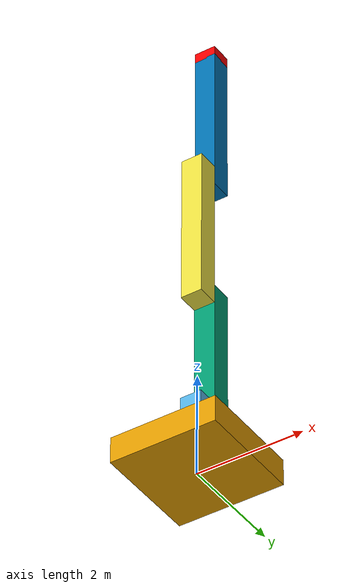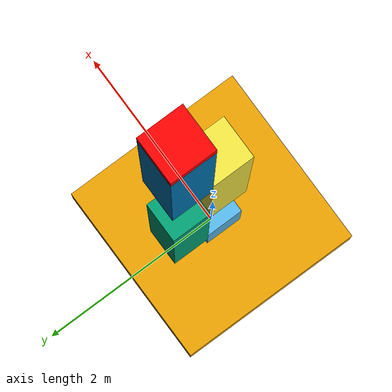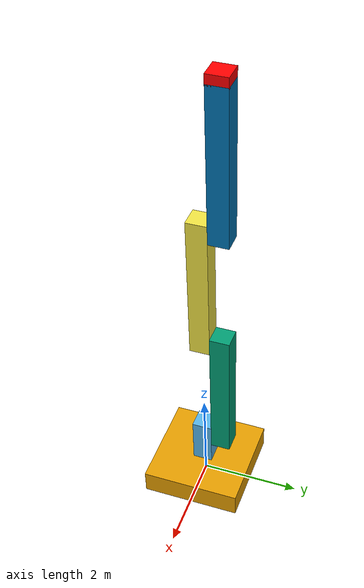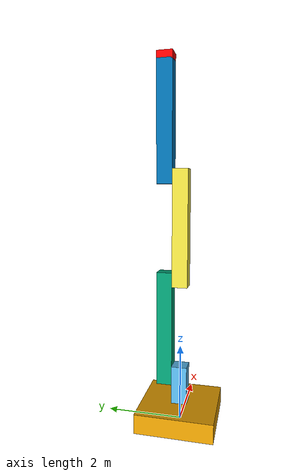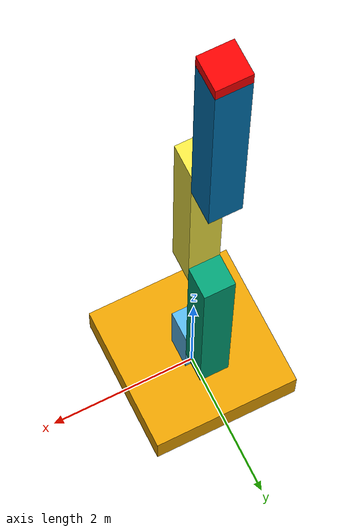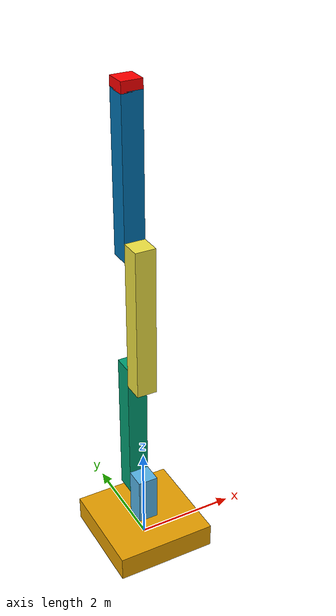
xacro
<?xml version="1.0"?>
<robot name="simple_robot" xmlns:xacro="http://www.ros.org/wiki/xacro">

        <xacro:include filename="$(find robotic_arm)/model/parameters.xacro"/>
        <xacro:include filename="$(find robotic_arm)/model/gazebo.xacro"/>

        <link name="base_link">
                <inertial>
                        <mass value="1500"/>
                        <inertia ixx="0.1" ixy="0.0" ixz="0.0" iyy="0.1" iyz="0" izz="0.1" />
                </inertial>
                <visual>
                        <geometry>
                                <box size="${base_length} ${base_width} ${base_height}"/>
                        </geometry>
                        <origin xyz="0 0 ${base_height/2}" rpy="0 0 0"/>
                </visual>
                <collision>
                        <geometry>
                                <box size="${base_length} ${base_width} ${base_height}"/>
                        </geometry>
                        <origin xyz="0 0 ${base_height/2}" rpy="0 0 0"/>
                </collision>
        </link>

        <link name="first_arm_link">
                <inertial>
                        <mass value="1"/>
                        <inertia ixx="0.001" ixy="0.0" ixz="0.0" iyy="0.001" iyz="0" izz="0.001" />
                </inertial>
                <visual>
                        <geometry>
                                <box size="${first_arm_length} ${first_arm_width} ${first_arm_height}"/>
                        </geometry>
                        <origin xyz="0 0 ${first_arm_height/2}" rpy="0 0 0"/>
                </visual>
                <collision>
                        <geometry>
                                <box size="${first_arm_length} ${first_arm_width} ${first_arm_height}"/>
                        </geometry>
                        <origin xyz="0 0 ${first_arm_height/2}" rpy="0 0 0"/>
                </collision>
        </link>

        <joint name="first_arm_joint" type="revolute">
                <origin xyz="0 0 ${base_height}" rpy="0 0 0"/>
                <parent link="base_link"/>
                <child link="first_arm_link"/>
                <axis xyz="0 0 1"/>
                <limit lower="-1.571" upper="1.571" effort="1000" velocity="1"/>
        </joint>

        <link name="second_arm_link">
                <inertial>
                        <mass value="1"/>
                        <inertia ixx="0.001" ixy="0.0" ixz="0.0" iyy="0.001" iyz="0" izz="0.001"/>
                </inertial>
                <visual>
                        <geometry>
                                <box size="${arm_length} ${arm_width} ${arm_height}"/>
                        </geometry>
                        <origin xyz="0 0 ${arm_height/2 - arm_height/8}" rpy="0 0 0"/>
                </visual>
                <collision>
                        <geometry>
                                <box size="${arm_length} ${arm_width} ${arm_height}"/>
                        </geometry>
                        <origin xyz="0 0 ${arm_height/2 - arm_height/8}" rpy="0 0 0"/>
                </collision>
        </link>

        <joint name="second_arm_joint" type="revolute">
                <origin xyz="0 ${first_arm_width} ${first_arm_height - first_arm_height/8}" rpy="0 0 0"/>
                <parent link="first_arm_link"/>
                <child link="second_arm_link"/>
                <axis xyz="0 1 0"/>
                <limit lower="-1.571" upper="1.571" effort="1000" velocity="1"/>
        </joint>

        <link name="third_arm_link">
                <inertial>
                        <mass value="1"/>
                        <inertia ixx="0.001" ixy="0.0" ixz="0.0" iyy="0.001" iyz="0" izz="0.001"/>
                </inertial>
                <visual>
                        <geometry>
                                <box size="${arm_length} ${arm_width} ${arm_height}"/>
                        </geometry>
                        <origin xyz="0 0 ${arm_height/2 - arm_height/8}" rpy="0 0 0"/>
                </visual>
                <collision>
                        <geometry>
                                <box size="${arm_length} ${arm_width} ${arm_height}"/>
                        </geometry>
                        <origin xyz="0 0 ${arm_height/2 - arm_height/8}" rpy="0 0 0"/>
                </collision>
        </link>

        <joint name="third_arm_joint" type="revolute">
                <origin xyz="0 ${-arm_width} ${arm_height - arm_height/8}" rpy="0 0 0"/>
                <parent link="second_arm_link"/>
                <child link="third_arm_link"/>
                <axis xyz="0 1 0"/>
                <limit lower="-1.571" upper="1.571" effort="1000" velocity="1"/>
        </joint>

        <link name="fourth_arm_link">
                <inertial>
                        <mass value="1"/>
                        <inertia ixx="0.001" ixy="0.0" ixz="0.0" iyy="0.001" iyz="0" izz="0.001"/>
                </inertial>
                <visual>
                        <geometry>
                                <box size="${arm_length} ${arm_width} ${arm_height}"/>
                        </geometry>
                        <origin xyz="0 0 ${arm_height/2 - arm_height/8}" rpy="0 0 0"/>
                </visual>
                <collision>
                        <geometry>
                                <box size="${arm_length} ${arm_width} ${arm_height}"/>
                        </geometry>
                        <origin xyz="0 0 ${arm_height/2 - arm_height/8}" rpy="0 0 0"/>
                </collision>
        </link>

        <joint name="fourth_arm_joint" type="revolute">
                <origin xyz="0 ${arm_width} ${arm_height - arm_height/8}" rpy="0 0 0"/>
                <parent link="third_arm_link"/>
                <child link="fourth_arm_link"/>
                <axis xyz="0 1 0"/>
                <limit lower="-1.571" upper="1.571" effort="1000" velocity="1"/>
        </joint>

        <link name="visual_reference">
                <inertial>
                        <mass value="1"/>
                        <inertia ixx="0.001" ixy="0.0" ixz="0.0" iyy="0.001" iyz="0" izz="0.001"/>
                </inertial>
                <visual>
                        <geometry>
                                <box size="${arm_length} ${arm_width} ${0.2}"/>
                        </geometry>
                        <origin xyz="0 0 0" rpy="0 0 0"/>
                        <material name="red">
                                <color rgba="1 0 0 1"/>
                        </material>
                </visual>
        </link>

        <joint name="visual_reference_joint" type="fixed">
                <origin xyz="0 0 ${arm_height - 0.3}" rpy="0 0 0"/>
                <parent link="fourth_arm_link"/>
                <child link="visual_reference"/>
        </joint>

        <ros2_control name="RobotController" type="system">
                <hardware>
                        <plugin>gz_ros2_control/GazeboSimSystem</plugin>
                </hardware>

                <joint name="first_arm_joint">
                        <command_interface name="position"/>
                        <state_interface name="position"/>
                </joint>

                <joint name="second_arm_joint">
                        <command_interface name="position"/>
                        <state_interface name="position"/>
                </joint>

                <joint name="third_arm_joint">
                        <command_interface name="position"/>
                        <state_interface name="position"/>
                </joint>

                <joint name="fourth_arm_joint">
                        <command_interface name="position"/>
                        <state_interface name="position"/>
                </joint>

        </ros2_control>

</robot>

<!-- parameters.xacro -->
<robot name="simple_robot" xmlns:xacro="http://www.ros.org/wiki/xacro">

        <xacro:property name="SCALE_FACTOR" value="1" />

        <xacro:property name="base_height" value="${0.5*SCALE_FACTOR}" />
        <xacro:property name="base_length" value="${2*SCALE_FACTOR}" />
        <xacro:property name="base_width" value="${2*SCALE_FACTOR}" />

        <xacro:property name="first_arm_height" value="${1*SCALE_FACTOR}" />
        <xacro:property name="first_arm_length" value="${0.4*SCALE_FACTOR}" />
        <xacro:property name="first_arm_width" value="${0.4*SCALE_FACTOR}" />

        <xacro:property name="arm_height" value="${3*SCALE_FACTOR}" />
        <xacro:property name="arm_length" value="${0.4*SCALE_FACTOR}" />
        <xacro:property name="arm_width" value="${0.4*SCALE_FACTOR}" />

</robot>
